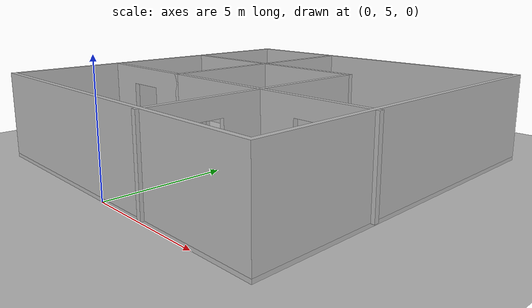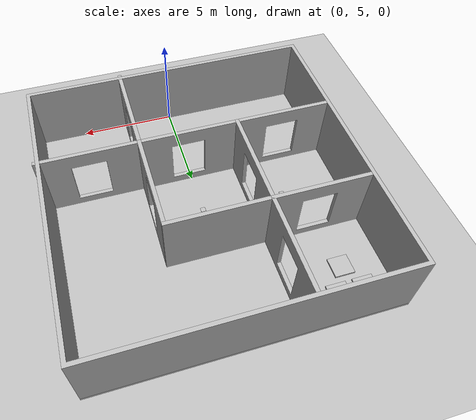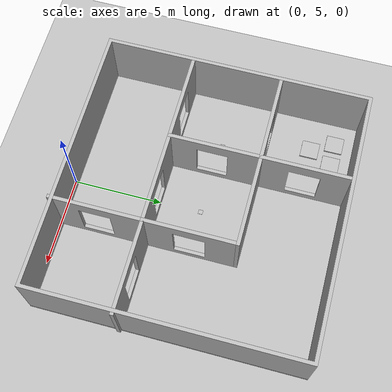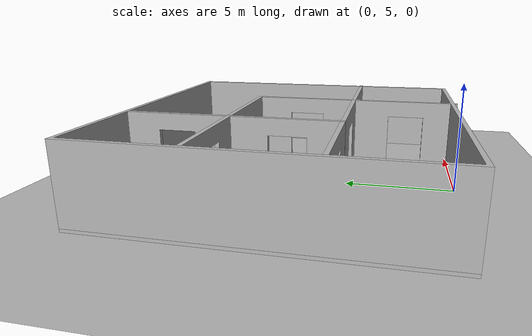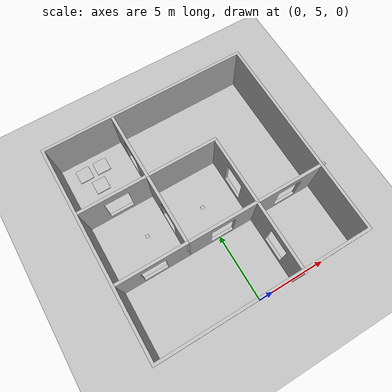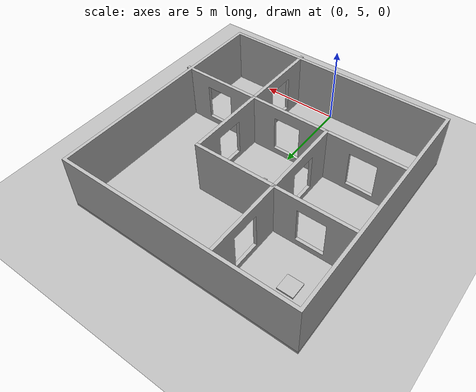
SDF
<sdf version="1.5">
 <world name="default">
  <physics type="ode">
   <max_step_size>0.004</max_step_size>
   <real_time_factor>1.0</real_time_factor>
   <real_time_update_rate>250</real_time_update_rate>
  </physics>
  <plugin name="gz::sim::systems::Physics" filename="gz-sim-physics-system"/>
  <plugin name="gz::sim::systems::UserCommands" filename="gz-sim-user-commands-system"/>
  <plugin name="gz::sim::systems::SceneBroadcaster" filename="gz-sim-scene-broadcaster-system"/>
  <plugin name="gz::sim::systems::Contact" filename="gz-sim-contact-system"/>
  <plugin name="gz::sim::systems::Imu" filename="gz-sim-imu-system"/>
  <plugin name="gz::sim::systems::AirPressure" filename="gz-sim-air-pressure-system"/>
  <plugin name="gz::sim::systems::ApplyLinkWrench" filename="gz-sim-apply-link-wrench-system"/>
  <plugin name="gz::sim::systems::NavSat" filename="gz-sim-navsat-system"/>
  <plugin name="gz::sim::systems::Sensors" filename="gz-sim-sensors-system">
   <render_engine>ogre2</render_engine>
  </plugin>
  <gravity>0 0 -9.8</gravity>
  <magnetic_field>6e-06 2.3e-05 -4.2e-05</magnetic_field>
  <atmosphere type="adiabatic"/>
  <scene>
   <grid>false</grid>
   <ambient>0.4 0.4 0.4 1</ambient>
   <background>0.7 0.7 0.7 1</background>
   <shadows>true</shadows>
  </scene>
  <spherical_coordinates>
   <surface_model>EARTH_WGS84</surface_model>
   <world_frame_orientation>ENU</world_frame_orientation>
   <latitude_deg>47.397971057728974</latitude_deg>
   <longitude_deg>8.546163739800146</longitude_deg>
   <elevation>0</elevation>
  </spherical_coordinates>
  <include><uri>model://sun</uri></include>
  <include><uri>model://ground_my</uri></include>
  <include>
   <name>walls</name>
   <uri>model://house_scene_2_walls_out</uri>
   <static>true</static>
   <pose>0 12.5 0 0 0 0</pose>
  </include>
  <include>
   <name>wall1</name>
   <uri>model://house_scene_2_wall_1</uri>
   <static>true</static>
   <pose>0 12.5 0 0 0 0</pose>
  </include>
  <include>
   <name>wall2</name>
   <uri>model://house_scene_2_wall_2</uri>
   <static>true</static>
   <pose>0 12.5 0 0 0 0</pose>
  </include>
  <include>
   <name>wall3</name>
   <uri>model://house_scene_2_wall_3</uri>
   <static>true</static>
   <pose>0 12.5 0 0 0 0</pose>
  </include>
  <include>
   <name>wall6</name>
   <uri>model://house_scene_2_wall_6</uri>
   <static>true</static>
   <pose>0 12.5 0 0 0 0</pose>
  </include>
  <include>
   <name>wall7</name>
   <uri>model://house_scene_2_wall_7</uri>
   <static>true</static>
   <pose>0 12.5 0 0 0 0</pose>
  </include>
  <include>
   <name>wall8</name>
   <uri>model://house_scene_2_wall_8</uri>
   <static>true</static>
   <pose>0 12.5 0 0 0 0</pose>
  </include>
  <include>
   <name>wall9</name>
   <uri>model://house_scene_2_wall_9</uri>
   <static>true</static>
   <pose>0 12.5 0 0 0 0</pose>
  </include>
  <include>
   <name>wall10</name>
   <uri>model://house_scene_2_wall_10</uri>
   <static>true</static>
   <pose>0 12.5 0 0 0 0</pose>
  </include>
  <include>
   <name>wall12</name>
   <uri>model://house_scene_2_wall_12</uri>
   <static>true</static>
   <pose>0 12.5 0 0 0 0</pose>
  </include>
  <include><name>qr4</name><uri>model://11qr_without_car</uri><pose>-4.25 12.49 0.1 0 0 0</pose></include>
  <include><name>qr5</name><uri>model://9qr_without_car</uri><pose>0.035 12.33 0.1 0 0 0</pose></include>
  <include><uri>model://platform</uri><static>true</static><pose>-6.1695 12.49 0.27 0 0 0</pose></include>
  <include><uri>model://platform_scnd</uri><static>true</static><pose>-5.29 17.4187 0.27 0 0 0</pose></include>
 </world>
</sdf>

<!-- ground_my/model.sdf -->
<sdf version="1.5">
    <model name="ground">
        <static>true</static>
        <link name="link">
            <collision name="collision">
                <geometry>
                    <mesh>
                        <scale>1 1 1</scale>
                        <uri>model://ground_my/meshes/ground.dae</uri>
                    </mesh>
                    <surface>
                    <friction>
                        <ode>
                            <mu>1.2</mu>
                            <mu2>1.2</mu2>
                        </ode>
                    </friction>
                    </surface>
                </geometry>
            </collision>
            <visual name="visual">
              <geometry>
                <mesh>
                    <scale>1 1 1</scale>
                    <uri>model://ground_my/meshes/ground.dae</uri>
                </mesh>
              </geometry>
             </visual>
        </link>
    </model>
</sdf>

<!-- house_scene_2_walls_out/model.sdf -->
<sdf version="1.5">
    <model name="house_walls">
        <static>true</static>
        <link name="link">
            <collision name="collision_wall">
                <pose>0 0 0.05 0 0 0</pose>
                <geometry>
                    <mesh>
                        <uri>model://house_scene_2_walls_out/meshes/scene_2_walls_out.dae</uri>
                    </mesh>
                </geometry>
            </collision>
            <visual name="visual_walls">
              <pose>0 0 0.05 0 0 0</pose>
              <geometry>
              <mesh>
                 <uri>model://house_scene_2_walls_out/meshes/scene_2_walls_out.dae</uri>
              </mesh>
              </geometry>
             </visual>

             <collision name="collision_flor">
                <pose>0 0 0.05 0 0 0</pose>
                <geometry>
                    <mesh>
                        <uri>model://house_scene_2_walls_out/meshes/floor_c.dae</uri>
                    </mesh>
                </geometry>
            </collision>
            <visual name="visual_flor">
              <pose>0 0 0.05 0 0 0</pose>
              <geometry>
              <mesh>
                 <uri>model://house_scene_2_walls_out/meshes/floor_c.dae</uri>
              </mesh>
              </geometry>
             </visual>
        </link>
    </model>
</sdf>

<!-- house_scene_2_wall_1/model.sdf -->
<sdf version="1.5">
    <model name="house_wall_1">
        <static>true</static>
        <link name="link">
            <collision name="collision_wall">
                <pose>0 0 0.05 0 0 0</pose>
                <geometry>
                    <mesh>
                        <uri>model://house_scene_2_wall_1/meshes/sc1qr.dae</uri>
                    </mesh>
                </geometry>
            </collision>
            <visual name="visual_walls">
              <pose>0 0 0.05 0 0 0</pose>
              <geometry>
              <mesh>
                 <uri>model://house_scene_2_wall_1/meshes/sc1qr.dae</uri>
              </mesh>
              </geometry>
             </visual>
        </link>
    </model>
</sdf>

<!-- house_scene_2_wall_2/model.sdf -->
<sdf version="1.5">
    <model name="house_wall_2">
        <static>true</static>
        <link name="link">
            <collision name="collision_wall">
                <pose>0 0 0.05 0 0 0</pose>
                <geometry>
                    <mesh>
                        <uri>model://house_scene_2_wall_2/meshes/sc2qr.dae</uri>
                    </mesh>
                </geometry>
            </collision>
            <visual name="visual_walls">
              <pose>0 0 0.05 0 0 0</pose>
              <geometry>
              <mesh>
                 <uri>model://house_scene_2_wall_2/meshes/sc2qr.dae</uri>
              </mesh>
              </geometry>
             </visual>
        </link>
    </model>
</sdf>

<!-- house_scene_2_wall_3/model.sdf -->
<sdf version="1.5">
    <model name="house_wall_3">
        <static>true</static>
        <link name="link">
            <collision name="collision_wall">
                <pose>0 0 0.05 0 0 0</pose>
                <geometry>
                    <mesh>
                        <uri>model://house_scene_2_wall_3/meshes/st3.dae</uri>
                    </mesh>
                </geometry>
            </collision>
            <visual name="visual_walls">
              <pose>0 0 0.05 0 0 0</pose>
              <geometry>
              <mesh>
                 <uri>model://house_scene_2_wall_3/meshes/st3.dae</uri>
              </mesh>
              </geometry>
             </visual>
        </link>
    </model>
</sdf>

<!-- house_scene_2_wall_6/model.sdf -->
<sdf version="1.5">
    <model name="house_wall_6">
        <static>true</static>
        <link name="link">
            <collision name="collision_wall">
                <pose>0 0 0.05 0 0 0</pose>
                <geometry>
                    <mesh>
                        <uri>model://house_scene_2_wall_6/meshes/sc6qr.dae</uri>
                    </mesh>
                </geometry>
            </collision>
            <visual name="visual_walls">
              <pose>0 0 0.05 0 0 0</pose>
              <geometry>
              <mesh>
                 <uri>model://house_scene_2_wall_6/meshes/sc6qr.dae</uri>
              </mesh>
              </geometry>
             </visual>
        </link>
    </model>
</sdf>

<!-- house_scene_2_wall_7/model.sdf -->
<sdf version="1.5">
    <model name="house_wall_7">
        <static>true</static>
        <link name="link">
            <collision name="collision_wall">
                <pose>0 0 0.05 0 0 0</pose>
                <geometry>
                    <mesh>
                        <uri>model://house_scene_2_wall_7/meshes/sc7qr.dae</uri>
                    </mesh>
                </geometry>
            </collision>
            <visual name="visual_walls">
              <pose>0 0 0.05 0 0 0</pose>
              <geometry>
              <mesh>
                 <uri>model://house_scene_2_wall_7/meshes/sc7qr.dae</uri>
              </mesh>
              </geometry>
             </visual>
        </link>
    </model>
</sdf>

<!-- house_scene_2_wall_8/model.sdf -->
<sdf version="1.5">
    <model name="house_wall_8">
        <static>true</static>
        <link name="link">
            <collision name="collision_wall">
                <pose>0 0 0.05 0 0 0</pose>
                <geometry>
                    <mesh>
                        <uri>model://house_scene_2_wall_8/meshes/sc8qr.dae</uri>
                    </mesh>
                </geometry>
            </collision>
            <visual name="visual_walls">
              <pose>0 0 0.05 0 0 0</pose>
              <geometry>
              <mesh>
                 <uri>model://house_scene_2_wall_8/meshes/sc8qr.dae</uri>
              </mesh>
              </geometry>
             </visual>
        </link>
    </model>
</sdf>

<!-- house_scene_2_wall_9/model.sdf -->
<sdf version="1.5">
    <model name="house_wall_9">
        <static>true</static>
        <link name="link">
            <collision name="collision_wall">
                <pose>0 0 0.05 0 0 0</pose>
                <geometry>
                    <mesh>
                        <uri>model://house_scene_2_wall_9/meshes/sc9qr.dae</uri>
                    </mesh>
                </geometry>
            </collision>
            <visual name="visual_walls">
              <pose>0 0 0.05 0 0 0</pose>
              <geometry>
              <mesh>
                 <uri>model://house_scene_2_wall_9/meshes/sc9qr.dae</uri>
              </mesh>
              </geometry>
             </visual>
        </link>
    </model>
</sdf>

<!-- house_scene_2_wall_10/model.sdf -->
<sdf version="1.5">
    <model name="house_wall_10">
        <static>true</static>
        <link name="link">
            <collision name="collision_wall">
                <pose>0 0 0.05 0 0 0</pose>
                <geometry>
                    <mesh>
                        <uri>model://house_scene_2_wall_10/meshes/sc10qr.dae</uri>
                    </mesh>
                </geometry>
            </collision>
            <visual name="visual_walls">
              <pose>0 0 0.05 0 0 0</pose>
              <geometry>
              <mesh>
                 <uri>model://house_scene_2_wall_10/meshes/sc10qr.dae</uri>
              </mesh>
              </geometry>
             </visual>
        </link>
    </model>
</sdf>

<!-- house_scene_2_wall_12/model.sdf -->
<sdf version="1.5">
    <model name="house_wall_12">
        <static>true</static>
        <link name="link">
            <collision name="collision_wall">
                <pose>0 0 0.05 0 0 0</pose>
                <geometry>
                    <mesh>
                        <uri>model://house_scene_2_wall_12/meshes/cs12_qr.dae</uri>
                    </mesh>
                </geometry>
            </collision>
            <visual name="visual_walls">
              <pose>0 0 0.05 0 0 0</pose>
              <geometry>
              <mesh>
                 <uri>model://house_scene_2_wall_12/meshes/cs12_qr.dae</uri>
              </mesh>
              </geometry>
             </visual>
        </link>
    </model>
</sdf>

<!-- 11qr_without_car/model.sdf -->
<sdf version="1.5">
    <model name='qr11'>
      <static>true</static>
        <link name="qr11">
             <collision name="collision">
                <pose>0 0 0.1 0 0 0</pose>
                <geometry>
                    <mesh>
                        <uri>model://11qr_without_car/meshes/qr.stl</uri>
                    </mesh>
                </geometry>
            </collision>
            <visual name="visual">
              <pose>0 0 0.1 0 0 0</pose>
              <geometry>
              <mesh>
                 <uri>model://11qr_without_car/meshes/qr11.dae</uri>
              </mesh>
              </geometry>
             </visual>
        </link>

    </model>
</sdf>

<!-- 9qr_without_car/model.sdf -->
<sdf version="1.5">
    <model name='qr9'>
      <static>true</static>
        <link name="qr9">
             <collision name="collision">
                <pose>0 0 0.1 0 0 0</pose>
                <geometry>
                    <mesh>
                        <uri>model://9qr_without_car/meshes/qr.stl</uri>
                    </mesh>
                </geometry>
            </collision>
            <visual name="visual">
              <pose>0 0 0.1 0 0 0</pose>
              <geometry>
              <mesh>
                 <uri>model://9qr_without_car/meshes/qr9.dae</uri>
              </mesh>
              </geometry>
             </visual>
        </link>

    </model>
</sdf>

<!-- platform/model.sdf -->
<sdf version="1.6">
  <model name="platform">
    <static>false</static>
    <link name="dummy_upper"/>

    <joint name="world_joint" type="fixed">
      <parent>world</parent>
      <child>dummy_upper</child>
    </joint>
  </model>
</sdf>

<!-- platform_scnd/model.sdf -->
<sdf version="1.5">
    <model name="platform_scnd">
        <static>true</static>
        <link name="link">
            <collision name="collision">
                <pose>0 0 0 0 0 0</pose>
                <geometry>
                    <mesh>
                        <uri>model://platform_scnd/meshes/metki.dae</uri>
                    </mesh>
                </geometry>
            </collision>
            <visual name="visual">
              <pose>0 0 0 0 0 0</pose>
              <geometry>
              <mesh>
                 <uri>model://platform_scnd/meshes/metki.dae</uri>
              </mesh>
              </geometry>
             </visual>
        </link>
    </model>
</sdf>
